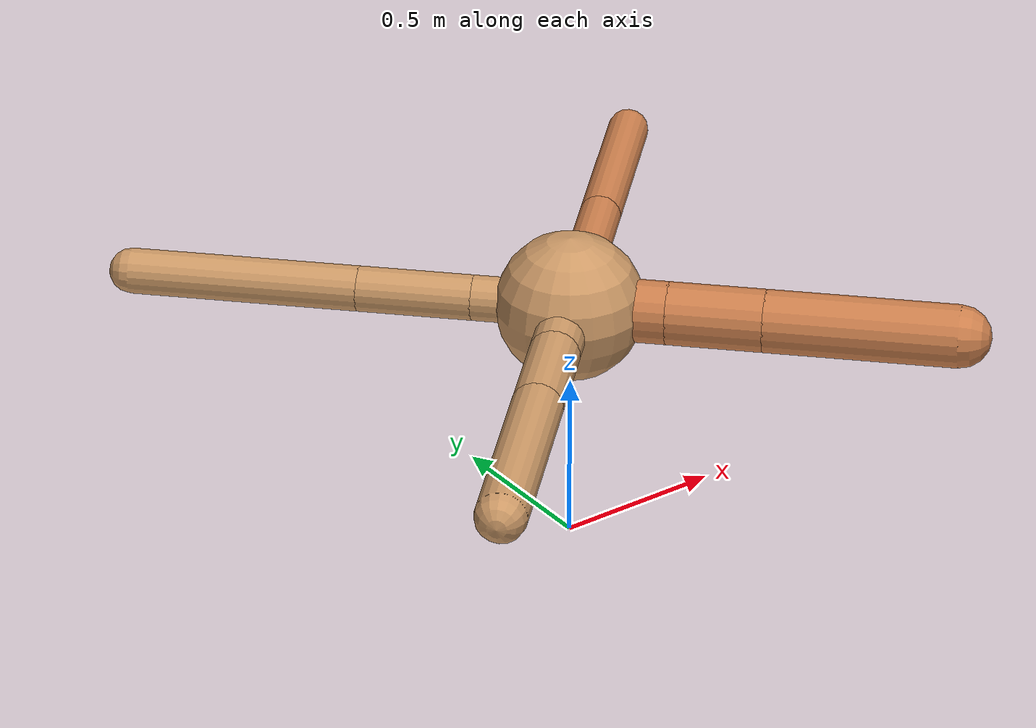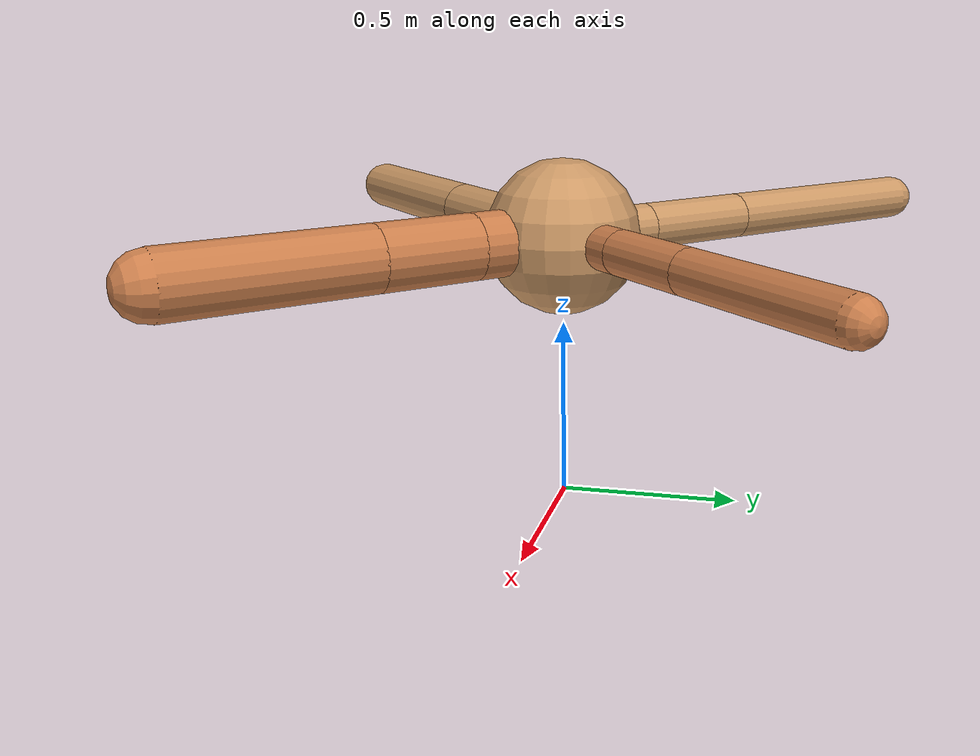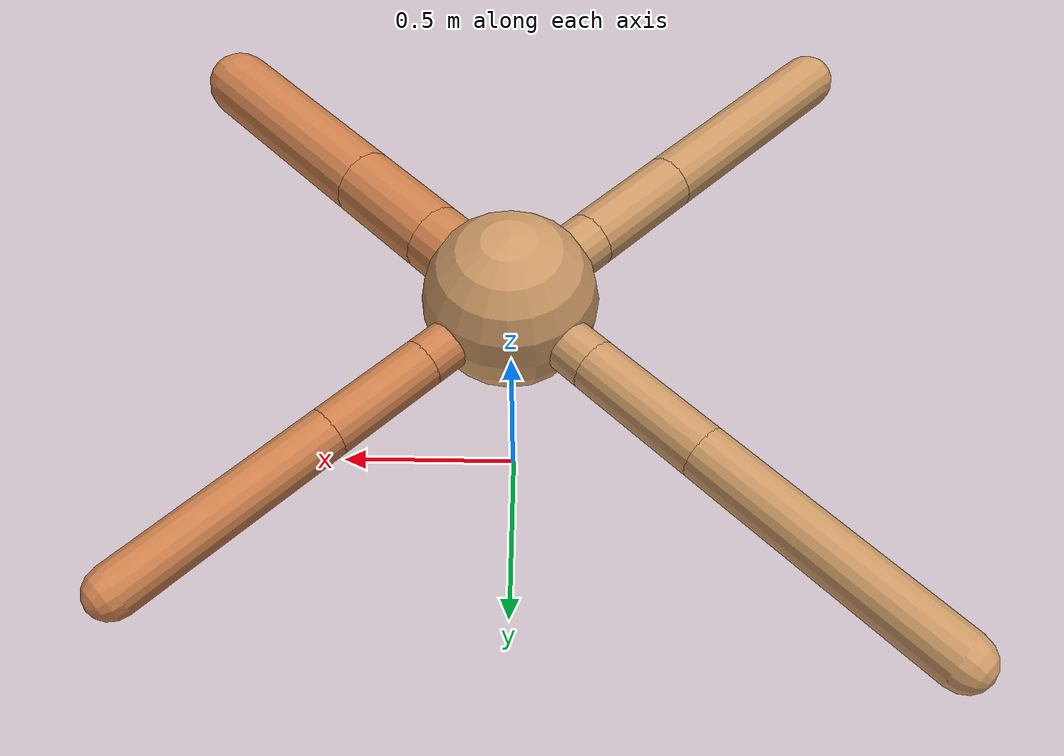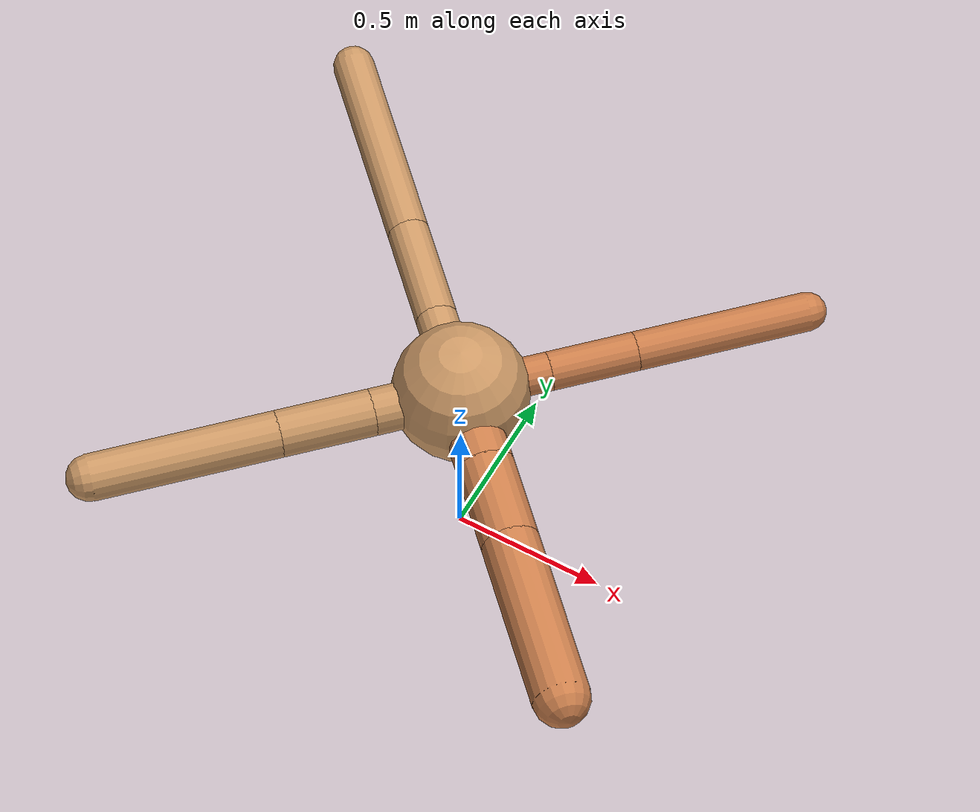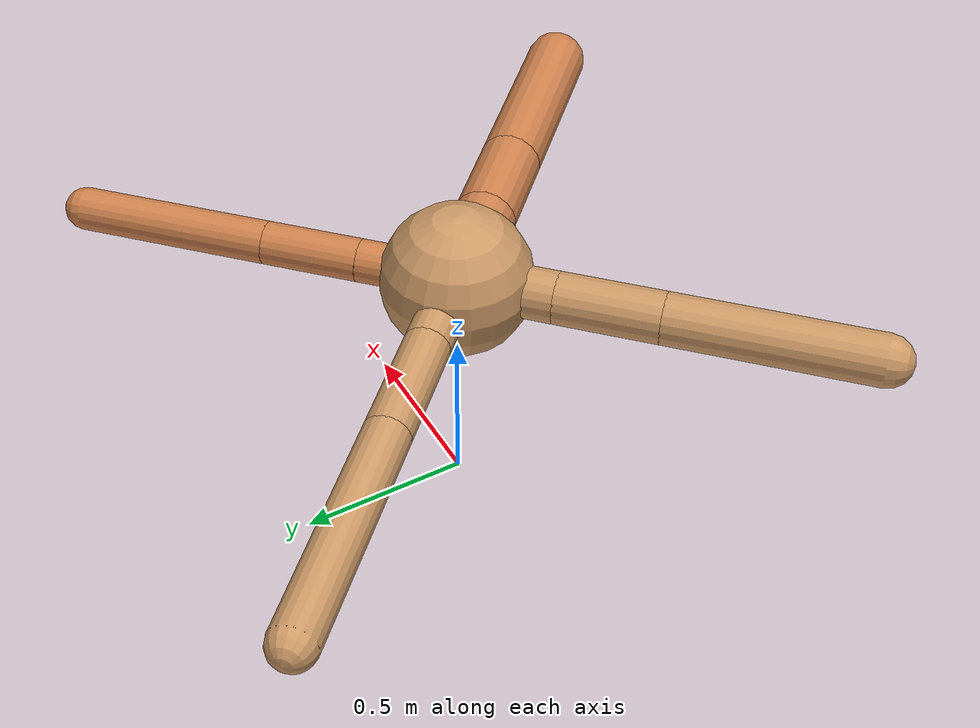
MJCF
<?xml version="1.0" ?>
<mujoco model="ant">

	<compiler angle="degree" coordinate="local" inertiafromgeom="true"/>

	<option integrator="RK4" timestep="0.01"/>

	<custom>

		<numeric data="0.0 0.0 0.55 1.0 0.0 0.0 0.0 0.0 1.0 0.0 -1.0 0.0 -1.0 0.0 1.0" name="init_qpos"/>

	</custom>

	<default>

		<joint armature="1" damping="1" limited="true"/>

		<geom conaffinity="0" condim="3" density="5.0" friction="1.5 0.1 0.1" margin="0.01" rgba="0.8 0.6 0.4 1"/>

	</default>

	<worldbody>

		<body name="torso" pos="0 0 0.75">

			<geom name="torso_geom" pos="0 0 0" size="0.2175702190896143" type="sphere"/>

			<!--joint armature="0" damping="0" limited="false" margin="0.01" name="root" pos="0 0 0" type="free"/-->

			<body name="front_left_leg" pos="0 0 0">

				<geom fromto="0 0 0 0.2 0.2 0" name="aux_1_geom" size="0.061549234713905165" type="capsule" rgba=".8 .5 .3 1"/>

				<body name="aux_1" pos="0.2 0.2 0">

					<joint axis="0 0 1" name="hip_1" pos="0.0 0.0 0.0" range="-40 40" type="hinge"/>

					<geom fromto="0 0 0 0.19728716708449667 0.19728716708449667 0" name="left_leg_geom" size="0.061549234713905165" type="capsule" rgba=".8 .5 .3 1"/>

					<body pos="0.19728716708449667 0.19728716708449667 0" name="front_left_foot">

						<joint axis="-1 1 0" name="ankle_1" pos="0.0 0.0 0.0" range="30 100" type="hinge"/>

						<geom fromto="0 0 0 0.39457433416899335 0.39457433416899335 0" name="left_ankle_geom" size="0.061549234713905165" type="capsule" rgba=".8 .5 .3 1"/>

					</body>

				</body>

			</body>

			<body name="front_right_leg" pos="0 0 0">

				<geom fromto="0 0 0 -0.2 0.2 0" name="aux_2_geom" size="0.06602893278505352" type="capsule"/>

				<body name="aux_2" pos="-0.2 0.2 0">

					<joint axis="0 0 1" name="hip_2" pos="0.0 0.0 0.0" range="-40 40" type="hinge"/>

					<geom fromto="0 0 0 -0.23744005055549386 0.23744005055549386 0" name="right_leg_geom" size="0.06602893278505352" type="capsule"/>

					<body pos="-0.23744005055549386 0.23744005055549386 0" name="front_right_foot">

						<joint axis="1 1 0" name="ankle_2" pos="0.0 0.0 0.0" range="-100 -30" type="hinge"/>

						<geom fromto="0 0 0 -0.4748801011109877 0.4748801011109877 0" name="right_ankle_geom" size="0.06602893278505352" type="capsule"/>

					</body>

				</body>

			</body>

			<body name="left_back_leg" pos="0 0 0">

				<geom fromto="0 0 0 -0.2 -0.2 0" name="aux_3_geom" size="0.07405951419857298" type="capsule"/>

				<body name="aux_3" pos="-0.2 -0.2 0">

					<joint axis="0 0 1" name="hip_3" pos="0.0 0.0 0.0" range="-40 40" type="hinge"/>

					<geom fromto="0 0 0 -0.2107039844364108 -0.2107039844364108 0" name="back_leg_geom" size="0.07405951419857298" type="capsule"/>

					<body pos="-0.2107039844364108 -0.2107039844364108 0" name="left_back_foot">

						<joint axis="-1 1 0" name="ankle_3" pos="0.0 0.0 0.0" range="-100 -30" type="hinge"/>

						<geom fromto="0 0 0 -0.4214079688728216 -0.4214079688728216 0" name="third_ankle_geom" size="0.07405951419857298" type="capsule"/>

					</body>

				</body>

			</body>

			<body name="right_back_leg" pos="0 0 0">

				<geom fromto="0 0 0 0.2 -0.2 0" name="aux_4_geom" size="0.09123377209578383" type="capsule" rgba=".8 .5 .3 1"/>

				<body name="aux_4" pos="0.2 -0.2 0">

					<joint axis="0 0 1" name="hip_4" pos="0.0 0.0 0.0" range="-40 40" type="hinge"/>

					<geom fromto="0 0 0 0.19808666887973833 -0.19808666887973833 0" name="rightback_leg_geom" size="0.09123377209578383" type="capsule" rgba=".8 .5 .3 1"/>

					<body pos="0.19808666887973833 -0.19808666887973833 0" name="right_back_foot">

						<joint axis="1 1 0" name="ankle_4" pos="0.0 0.0 0.0" range="30 100" type="hinge"/>

						<geom fromto="0 0 0 0.39617333775947666 -0.39617333775947666 0" name="fourth_ankle_geom" size="0.09123377209578383" type="capsule" rgba=".8 .5 .3 1"/>

					</body>

				</body>

			</body>

		</body>

	</worldbody>

	<actuator>

		<motor ctrllimited="true" ctrlrange="-1.0 1.0" joint="hip_4" gear="150"/>

		<motor ctrllimited="true" ctrlrange="-1.0 1.0" joint="ankle_4" gear="150"/>

		<motor ctrllimited="true" ctrlrange="-1.0 1.0" joint="hip_1" gear="150"/>

		<motor ctrllimited="true" ctrlrange="-1.0 1.0" joint="ankle_1" gear="150"/>

		<motor ctrllimited="true" ctrlrange="-1.0 1.0" joint="hip_2" gear="150"/>

		<motor ctrllimited="true" ctrlrange="-1.0 1.0" joint="ankle_2" gear="150"/>

		<motor ctrllimited="true" ctrlrange="-1.0 1.0" joint="hip_3" gear="150"/>

		<motor ctrllimited="true" ctrlrange="-1.0 1.0" joint="ankle_3" gear="150"/>

	</actuator>

</mujoco>
